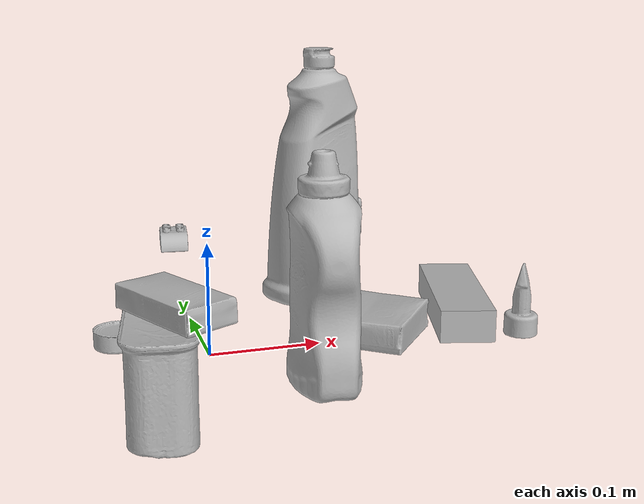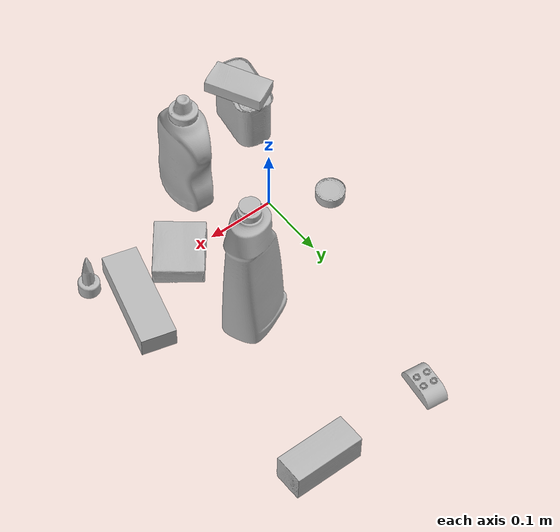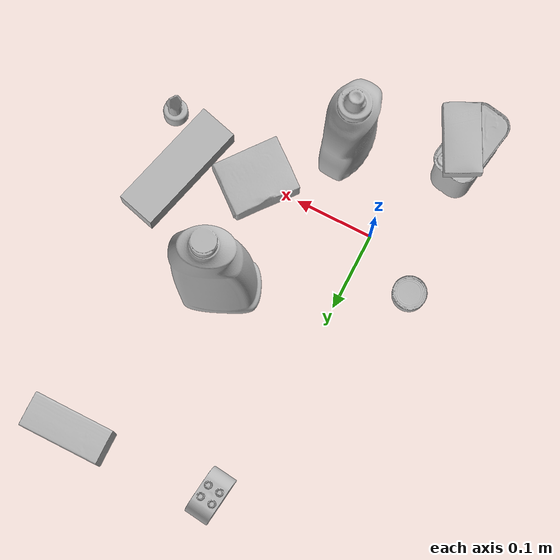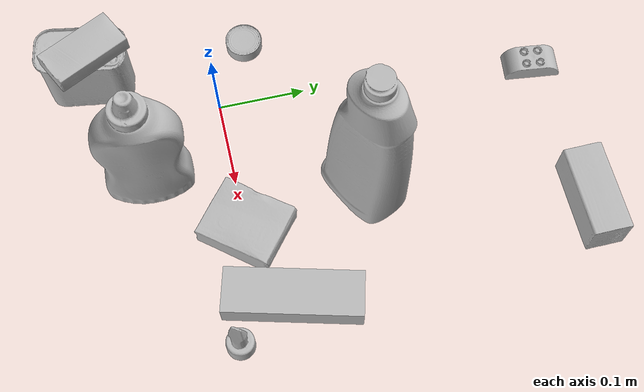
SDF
<sdf version="1.4">
  <world name="default">
    <light name="light1" type="point">
      <pose>0 0 1 0 0 0</pose>
      <diffuse>3 3 3 1</diffuse>
      <specular>3 3 3 1</specular>
    </light>
    <light name="light2" type="point">
      <pose>0 0.5 2 0 0 0</pose>
      <diffuse>1 1 1 1</diffuse>
      <specular>1 1 1 1</specular>
    </light>
    <light name="light3" type="point">
      <pose>0 0.5 2 0 0 0</pose>
      <diffuse>3 3 3 1</diffuse>
      <specular>3 3 3 1</specular>
    </light>
    <scene>
      <ambient>0.7 0.7 0.7</ambient>
    </scene>
    <model name="bottle1">
      <link name="link_bottle1">
        <collision name="default">
          <geometry>
            <mesh>
              <uri>model://bleach_cleanser/collision_meshes/collision.obj</uri>
              <scale>1.0 1.0 1.0</scale>
            </mesh>
          </geometry>
          <surface>
            <friction>
              <ode>
                <mu>0.5</mu>
                <mu2>0.5</mu2>
              </ode>
            </friction>
          <contact>
        <ode>
            <max_vel>0</max_vel>
            <min_depth>0.0001</min_depth>
            <kp>1e8</kp>
        </ode>
    </contact></surface>
        </collision>
        <visual name="default">
          <geometry>
            <mesh>
              <uri>model://bleach_cleanser/visual_meshes/visual.dae</uri>
              <scale>1.0 1.0 1.0</scale>
            </mesh>
          </geometry>
        </visual>
        <inertial>
          <mass>0.5324875712394714</mass>
          <pose>0.00012193183647468686 0.0037838825955986977 -0.024421609938144684 -0.07381669869164166 0.0004201168944593395 -0.0068750469260774934</pose>
          <inertia>
            <ixx>0.0025916947</ixx>
            <iyy>0.0024150796</iyy>
            <izz>0.00044311245</izz>
            <ixy>0</ixy>
            <ixz>0</ixz>
            <iyz>0</iyz>
          </inertia>
        </inertial>
      </link>
      <pose>0.13477155566215515 0.14023356139659882 0.12578415870666504 -0.0001997952169236878 1.629408619185934e-05 -1.1220495389322338</pose>
    </model>
    <model name="bottle2">
      <link name="link_bottle2">
        <collision name="default">
          <geometry>
            <mesh>
              <uri>model://mustard_bottle/collision_meshes/collision.obj</uri>
              <scale>1.0 1.0 1.0</scale>
            </mesh>
          </geometry>
          <surface>
            <friction>
              <ode>
                <mu>0.5</mu>
                <mu2>0.5</mu2>
              </ode>
            </friction>
          <contact>
        <ode>
            <max_vel>0</max_vel>
            <min_depth>0.0001</min_depth>
            <kp>1e8</kp>
        </ode>
    </contact></surface>
        </collision>
        <visual name="default">
          <geometry>
            <mesh>
              <uri>model://mustard_bottle/visual_meshes/visual.dae</uri>
              <scale>1.0 1.0 1.0</scale>
            </mesh>
          </geometry>
        </visual>
        <inertial>
          <mass>0.7762566804885864</mass>
          <pose>0.0005032453336752951 -0.0001564739941386506 -0.01747579127550125 0.0004182320844136383 0.0009465775961192733 0.024853776391442105</pose>
          <inertia>
            <ixx>0.0021555587</ixx>
            <iyy>0.0018913207</iyy>
            <izz>0.00056809856</izz>
            <ixy>0</ixy>
            <ixz>0</ixz>
            <iyz>0</iyz>
          </inertia>
        </inertial>
      </link>
      <pose>0.07684648036956787 -0.09033084660768509 0.09615197777748108 1.5262099215172977e-05 1.694931299813692e-05 3.070303612921862</pose>
    </model>
    <model name="toy1">
      <link name="link_toy1">
        <collision name="default">
          <geometry>
            <mesh>
              <uri>model://e_toy_airplane/collision_meshes/collision.obj</uri>
              <scale>1.0 1.0 1.0</scale>
            </mesh>
          </geometry>
          <surface>
            <friction>
              <ode>
                <mu>0.5</mu>
                <mu2>0.5</mu2>
              </ode>
            </friction>
          <contact>
        <ode>
            <max_vel>0</max_vel>
            <min_depth>0.0001</min_depth>
            <kp>1e8</kp>
        </ode>
    </contact></surface>
        </collision>
        <visual name="default">
          <geometry>
            <mesh>
              <uri>model://e_toy_airplane/visual_meshes/visual.dae</uri>
              <scale>1.0 1.0 1.0</scale>
            </mesh>
          </geometry>
        </visual>
        <inertial>
          <mass>0.01693064346909523</mass>
          <pose>0.00011740485206246376 -2.2482869098894298e-05 -0.011187203228473663 0.005518486263483037 0.009228306153066855 0.15041416456770357</pose>
          <inertia>
            <ixx>5.1674256e-06</ixx>
            <iyy>5.1145657e-06</iyy>
            <izz>1.5530146e-06</izz>
            <ixy>0</ixy>
            <ixz>0</ixz>
            <iyz>0</iyz>
          </inertia>
        </inertial>
      </link>
      <pose>0.28434959053993225 -0.02966529317200184 0.033212147653102875 6.385858474301206e-05 -9.697700328085396e-05 -0.7372729722827722</pose>
    </model>
    <model name="toy2">
      <link name="link_toy2">
        <collision name="default">
          <geometry>
            <mesh>
              <uri>model://a_lego_duplo/collision_meshes/collision.obj</uri>
              <scale>1.0 1.0 1.0</scale>
            </mesh>
          </geometry>
          <surface>
            <friction>
              <ode>
                <mu>0.5</mu>
                <mu2>0.5</mu2>
              </ode>
            </friction>
          <contact>
        <ode>
            <max_vel>0</max_vel>
            <min_depth>0.0001</min_depth>
            <kp>1e8</kp>
        </ode>
    </contact></surface>
        </collision>
        <visual name="default">
          <geometry>
            <mesh>
              <uri>model://a_lego_duplo/visual_meshes/visual.dae</uri>
              <scale>1.0 1.0 1.0</scale>
            </mesh>
          </geometry>
        </visual>
        <inertial>
          <mass>0.026311658322811127</mass>
          <pose>-0.000113377594971098 0.00018517566786613315 0.0003692609607242048 -0.014117022075399962 -0.00012566465015892618 6.142856652531641e-05</pose>
          <inertia>
            <ixx>3.3733654e-06</ixx>
            <iyy>7.557078e-06</iyy>
            <izz>9.361117e-06</izz>
            <ixy>0</ixy>
            <ixz>0</ixz>
            <iyz>0</iyz>
          </inertia>
        </inertial>
      </link>
      <pose>0.02723773382604122 0.36854270100593567 0.012086314149200916 0.0005567619054807009 0.0005138866546328059 1.458804904364547</pose>
    </model>
    <model name="can1">
      <link name="link_can1">
        <collision name="default">
          <geometry>
            <mesh>
              <uri>model://tuna_fish_can/collision_meshes/collision.obj</uri>
              <scale>0.5 0.5 0.5</scale>
            </mesh>
          </geometry>
          <surface>
            <friction>
              <ode>
                <mu>0.5</mu>
                <mu2>0.5</mu2>
              </ode>
            </friction>
          <contact>
        <ode>
            <max_vel>0</max_vel>
            <min_depth>0.0001</min_depth>
            <kp>1e8</kp>
        </ode>
    </contact></surface>
        </collision>
        <visual name="default">
          <geometry>
            <mesh>
              <uri>model://tuna_fish_can/visual_meshes/visual.dae</uri>
              <scale>0.5 0.5 0.5</scale>
            </mesh>
          </geometry>
        </visual>
        <inertial>
          <mass>0.025987863540649414</mass>
          <pose>-2.0361601855256595e-05 -7.256298886204604e-06 -0.0005269025568850338 -0.0017944787689317097 0.0001716279666079131 0.24054509142506303</pose>
          <inertia>
            <ixx>3.5135977e-06</ixx>
            <iyy>3.4989534e-06</iyy>
            <izz>6.0122675e-06</izz>
            <ixy>0</ixy>
            <ixz>0</ixz>
            <iyz>0</iyz>
          </inertia>
        </inertial>
      </link>
      <pose>-0.07462441921234131 0.04398700222373009 0.008519996888935566 2.345457171759821e-08 3.962663038259981e-08 2.978737587901807</pose>
    </model>
    <model name="can2">
      <link name="link_can2">
        <collision name="default">
          <geometry>
            <mesh>
              <uri>model://potted_meat_can/collision_meshes/collision.obj</uri>
              <scale>1.0 1.0 1.0</scale>
            </mesh>
          </geometry>
          <surface>
            <friction>
              <ode>
                <mu>0.5</mu>
                <mu2>0.5</mu2>
              </ode>
            </friction>
          <contact>
        <ode>
            <max_vel>0</max_vel>
            <min_depth>0.0001</min_depth>
            <kp>1e8</kp>
        </ode>
    </contact></surface>
        </collision>
        <visual name="default">
          <geometry>
            <mesh>
              <uri>model://potted_meat_can/visual_meshes/visual.dae</uri>
              <scale>1.0 1.0 1.0</scale>
            </mesh>
          </geometry>
        </visual>
        <inertial>
          <mass>0.2732236087322235</mass>
          <pose>0.00022888141393195838 -5.989111741655506e-05 -0.0006367441383190453 -0.028093326615163196 -0.007232604646238421 0.015406262399643026</pose>
          <inertia>
            <ixx>0.0003514736</ixx>
            <iyy>0.00021354685</iyy>
            <izz>0.00025563012</izz>
            <ixy>0</ixy>
            <ixz>0</ixz>
            <iyz>0</iyz>
          </inertia>
        </inertial>
      </link>
      <pose>-0.06042347475886345 -0.13803276419639587 0.042127981781959534 -4.7408289358726243e-07 -9.551089056640404e-06 2.967755008143769</pose>
    </model>
    <model name="box1">
      <link name="link_box1">
        <collision name="default">
          <geometry>
            <mesh>
              <uri>model://gelatin_box/collision_meshes/collision.obj</uri>
              <scale>1.0 1.0 1.0</scale>
            </mesh>
          </geometry>
          <surface>
            <friction>
              <ode>
                <mu>0.5</mu>
                <mu2>0.5</mu2>
              </ode>
            </friction>
          <contact>
        <ode>
            <max_vel>0</max_vel>
            <min_depth>0.0001</min_depth>
            <kp>1e8</kp>
        </ode>
    </contact></surface>
        </collision>
        <visual name="default">
          <geometry>
            <mesh>
              <uri>model://gelatin_box/visual_meshes/visual.dae</uri>
              <scale>1.0 1.0 1.0</scale>
            </mesh>
          </geometry>
        </visual>
        <inertial>
          <mass>0.14974145591259003</mass>
          <pose>0.0004319618456065655 0.00011156871914863586 -0.0003640321083366871 -0.0010503719798216618 -0.004755819622564704 0.01644055760929568</pose>
          <inertia>
            <ixx>0.00010570526</ixx>
            <iyy>7.550471e-05</iyy>
            <izz>0.00016090693</izz>
            <ixy>0</ixy>
            <ixz>0</ixz>
            <iyz>0</iyz>
          </inertia>
        </inertial>
      </link>
      <pose>0.15623171627521515 0.0019259480759501457 0.015168314799666405 0.005597447699404784 -0.007304572996587001 2.4599764427086557</pose>
    </model>
    <model name="box2">
      <link name="link_box2">
        <collision name="default">
          <geometry>
            <mesh>
              <uri>model://sugar_box/collision_meshes/collision.obj</uri>
              <scale>0.5 0.5 0.5</scale>
            </mesh>
          </geometry>
          <surface>
            <friction>
              <ode>
                <mu>0.5</mu>
                <mu2>0.5</mu2>
              </ode>
            </friction>
          <contact>
        <ode>
            <max_vel>0</max_vel>
            <min_depth>0.0001</min_depth>
            <kp>1e8</kp>
        </ode>
    </contact></surface>
        </collision>
        <visual name="default">
          <geometry>
            <mesh>
              <uri>model://sugar_box/visual_meshes/visual.dae</uri>
              <scale>0.5 0.5 0.5</scale>
            </mesh>
          </geometry>
        </visual>
        <inertial>
          <mass>0.07143953442573547</mass>
          <pose>0.0005171863595023751 1.924554817378521e-05 -0.00018182402709499002 -0.0004046263588767038 0.0010506634057764815 0.0026153785560837986</pose>
          <inertia>
            <ixx>1.4880804e-05</ixx>
            <iyy>4.8097805e-05</iyy>
            <izz>5.757883e-05</izz>
            <ixy>0</ixy>
            <ixz>0</ixz>
            <iyz>0</iyz>
          </inertia>
        </inertial>
      </link>
      <pose>-0.0485025979578495 -0.13220256567001343 0.09464521706104279 -0.002718310272427285 -0.0011265925386600892 2.038053869335816</pose>
    </model>
    <model name="box3">
      <link name="link_box3">
        <collision name="default">
          <geometry>
            <mesh>
              <uri>model://jenga/collision_meshes/collision.obj</uri>
              <scale>1.0 1.0 1.0</scale>
            </mesh>
          </geometry>
          <surface>
            <friction>
              <ode>
                <mu>0.5</mu>
                <mu2>0.5</mu2>
              </ode>
            </friction>
          <contact>
        <ode>
            <max_vel>0</max_vel>
            <min_depth>0.0001</min_depth>
            <kp>1e8</kp>
        </ode>
    </contact></surface>
        </collision>
        <visual name="default">
          <geometry>
            <mesh>
              <uri>model://jenga/visual_meshes/visual.dae</uri>
              <scale>1.0 1.0 1.0</scale>
            </mesh>
          </geometry>
        </visual>
        <inertial>
          <mass>0.2564851939678192</mass>
          <pose>-2.502855807051674e-07 -0.00010250010382151231 -4.0923401684267446e-05 0.0 -7.342154049184251e-07 0.0</pose>
          <inertia>
            <ixx>7.097568e-05</ixx>
            <iyy>0.00048092927</iyy>
            <izz>0.0005134329</izz>
            <ixy>0</ixy>
            <ixz>0</ixz>
            <iyz>0</iyz>
          </inertia>
        </inertial>
      </link>
      <pose>0.24713623523712158 0.034542910754680634 0.01499999687075615 2.2122537696831225e-08 1.0188075135942843e-08 -1.8296787058707735</pose>
    </model>
    <model name="box4">
      <link name="link_box4">
        <collision name="default">
          <geometry>
            <mesh>
              <uri>model://wood_block/collision_meshes/collision.obj</uri>
              <scale>0.5 0.5 0.5</scale>
            </mesh>
          </geometry>
          <surface>
            <friction>
              <ode>
                <mu>0.5</mu>
                <mu2>0.5</mu2>
              </ode>
            </friction>
          <contact>
        <ode>
            <max_vel>0</max_vel>
            <min_depth>0.0001</min_depth>
            <kp>1e8</kp>
        </ode>
    </contact></surface>
        </collision>
        <visual name="default">
          <geometry>
            <mesh>
              <uri>model://wood_block/visual_meshes/visual.dae</uri>
              <scale>0.5 0.5 0.5</scale>
            </mesh>
          </geometry>
        </visual>
        <inertial>
          <mass>0.2543213665485382</mass>
          <pose>-2.906657982748584e-06 -0.000285404734313488 0.00013204291462898254 -0.05220794665887619 -0.0051926956484831775 -0.006861378561045436</pose>
          <inertia>
            <ixx>8.508011e-05</ixx>
            <iyy>0.00026876814</iyy>
            <izz>0.00026776275</izz>
            <ixy>0</ixy>
            <ixz>0</ixz>
            <iyz>0</iyz>
          </inertia>
        </inertial>
      </link>
      <pose>0.21183983981609344 0.37794679403305054 0.02262926660478115 -0.005208422222414587 0.00571856909778668 0.005157686114289542</pose>
    </model>
  <physics type="ode">
      <max_contacts>50</max_contacts>
      <ode>
        <solver>
          <type>quick</type>
          <iters>75</iters>
        </solver>
        <constraints>
          <contact_max_correcting_vel>0</contact_max_correcting_vel>
          <contact_surface_layer>0</contact_surface_layer>
        </constraints>
      </ode>
    </physics></world>
</sdf>
